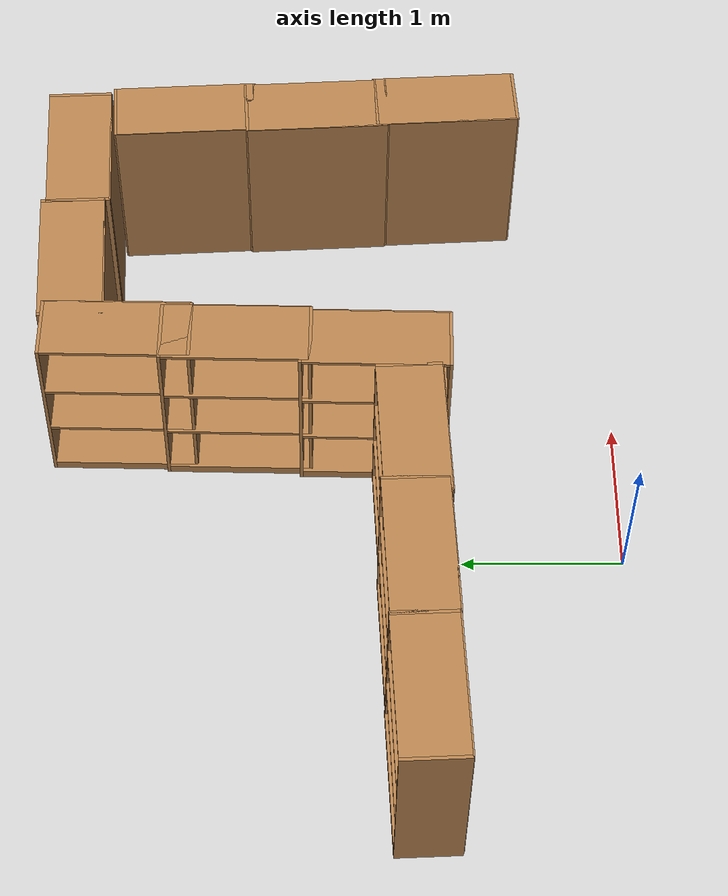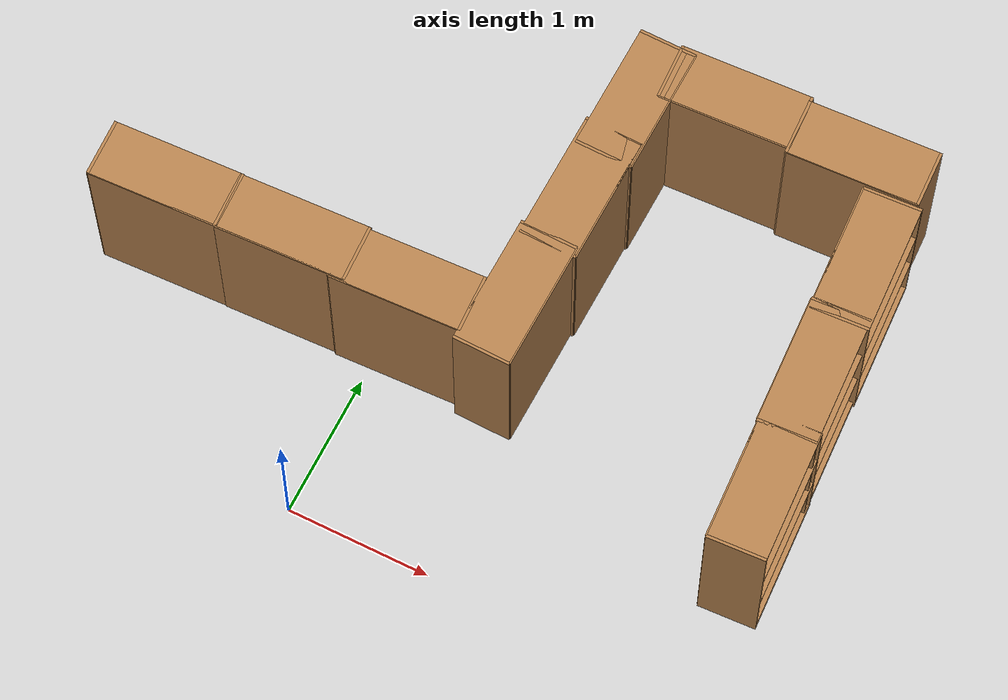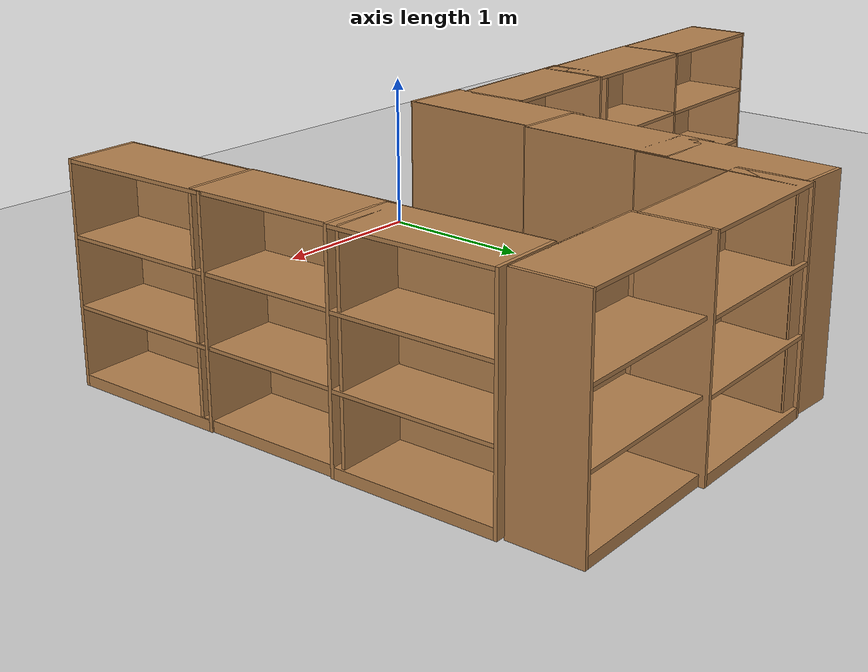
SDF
<sdf version="1.6">
 <world name="default">
  <model name="ground_plane">
   <static>1</static>
   <link name="link">
    <collision name="collision">
     <geometry><plane><normal>0 0 1</normal><size>100 100</size></plane></geometry>
     <surface>
      <contact><collide_bitmask>65535</collide_bitmask></contact>
      <friction><ode><mu>100</mu><mu2>50</mu2></ode></friction>
     </surface>
    </collision>
    <visual name="visual">
     <cast_shadows>0</cast_shadows>
     <geometry><plane><normal>0 0 1</normal><size>100 100</size></plane></geometry>
     <material>
      <script><uri>file://media/materials/scripts/gazebo.material</uri><name>Gazebo/Grey</name></script>
     </material>
    </visual>
   </link>
  </model>
  <model name="bookshelf_clone_0_clone">
   <static>1</static>
   <link name="link">
    <inertial><mass>1</mass></inertial>
    <collision name="back">
     <pose>0 0.005 0.6 0 -0 0</pose>
     <geometry><box><size>0.9 0.01 1.2</size></box></geometry>
    </collision>
    <visual name="visual1">
     <pose>0 0.005 0.6 0 -0 0</pose>
     <geometry><box><size>0.9 0.01 1.2</size></box></geometry>
     <material>
      <script><uri>file://media/materials/scripts/gazebo.material</uri><name>Gazebo/Wood</name></script>
     </material>
    </visual>
    <collision name="left_side">
     <pose>0.45 -0.195 0.6 0 -0 0</pose>
     <geometry><box><size>0.02 0.4 1.2</size></box></geometry>
    </collision>
    <visual name="visual2">
     <pose>0.45 -0.195 0.6 0 -0 0</pose>
     <geometry><box><size>0.02 0.4 1.2</size></box></geometry>
     <material>
      <script><uri>file://media/materials/scripts/gazebo.material</uri><name>Gazebo/Wood</name></script>
     </material>
    </visual>
    <collision name="right_side">
     <pose>-0.45 -0.195 0.6 0 -0 0</pose>
     <geometry><box><size>0.02 0.4 1.2</size></box></geometry>
    </collision>
    <visual name="visual3">
     <pose>-0.45 -0.195 0.6 0 -0 0</pose>
     <geometry><box><size>0.02 0.4 1.2</size></box></geometry>
     <material>
      <script><uri>file://media/materials/scripts/gazebo.material</uri><name>Gazebo/Wood</name></script>
     </material>
    </visual>
    <collision name="bottom">
     <pose>0 -0.195 0.03 0 -0 0</pose>
     <geometry><box><size>0.88 0.4 0.06</size></box></geometry>
    </collision>
    <visual name="visual4">
     <pose>0 -0.195 0.03 0 -0 0</pose>
     <geometry><box><size>0.88 0.4 0.06</size></box></geometry>
     <material>
      <script><uri>file://media/materials/scripts/gazebo.material</uri><name>Gazebo/Wood</name></script>
     </material>
    </visual>
    <collision name="top">
     <pose>0 -0.195 1.19 0 -0 0</pose>
     <geometry><box><size>0.88 0.4 0.02</size></box></geometry>
    </collision>
    <visual name="visual5">
     <pose>0 -0.195 1.19 0 -0 0</pose>
     <geometry><box><size>0.88 0.4 0.02</size></box></geometry>
     <material>
      <script><uri>file://media/materials/scripts/gazebo.material</uri><name>Gazebo/Wood</name></script>
     </material>
    </visual>
    <collision name="low_shelf">
     <pose>0 -0.195 0.43 0 -0 0</pose>
     <geometry><box><size>0.88 0.4 0.02</size></box></geometry>
    </collision>
    <visual name="visual6">
     <pose>0 -0.195 0.43 0 -0 0</pose>
     <geometry><box><size>0.88 0.4 0.02</size></box></geometry>
     <material>
      <script><uri>file://media/materials/scripts/gazebo.material</uri><name>Gazebo/Wood</name></script>
     </material>
    </visual>
    <collision name="high_shelf">
     <pose>0 -0.195 0.8 0 -0 0</pose>
     <geometry><box><size>0.88 0.4 0.02</size></box></geometry>
    </collision>
    <visual name="visual7">
     <pose>0 -0.195 0.8 0 -0 0</pose>
     <geometry><box><size>0.88 0.4 0.02</size></box></geometry>
     <material>
      <script><uri>file://media/materials/scripts/gazebo.material</uri><name>Gazebo/Wood</name></script>
     </material>
    </visual>
   </link>
   <pose>-1.49307 1.07905 0 0 0 -3.10047</pose>
  </model>
  <model name="bookshelf_clone_0_clone_clone">
   <static>1</static>
   <link name="link">
    <inertial><mass>1</mass></inertial>
    <collision name="back">
     <pose>0 0.005 0.6 0 -0 0</pose>
     <geometry><box><size>0.9 0.01 1.2</size></box></geometry>
    </collision>
    <visual name="visual1">
     <pose>0 0.005 0.6 0 -0 0</pose>
     <geometry><box><size>0.9 0.01 1.2</size></box></geometry>
     <material>
      <script><uri>file://media/materials/scripts/gazebo.material</uri><name>Gazebo/Wood</name></script>
     </material>
    </visual>
    <collision name="left_side">
     <pose>0.45 -0.195 0.6 0 -0 0</pose>
     <geometry><box><size>0.02 0.4 1.2</size></box></geometry>
    </collision>
    <visual name="visual2">
     <pose>0.45 -0.195 0.6 0 -0 0</pose>
     <geometry><box><size>0.02 0.4 1.2</size></box></geometry>
     <material>
      <script><uri>file://media/materials/scripts/gazebo.material</uri><name>Gazebo/Wood</name></script>
     </material>
    </visual>
    <collision name="right_side">
     <pose>-0.45 -0.195 0.6 0 -0 0</pose>
     <geometry><box><size>0.02 0.4 1.2</size></box></geometry>
    </collision>
    <visual name="visual3">
     <pose>-0.45 -0.195 0.6 0 -0 0</pose>
     <geometry><box><size>0.02 0.4 1.2</size></box></geometry>
     <material>
      <script><uri>file://media/materials/scripts/gazebo.material</uri><name>Gazebo/Wood</name></script>
     </material>
    </visual>
    <collision name="bottom">
     <pose>0 -0.195 0.03 0 -0 0</pose>
     <geometry><box><size>0.88 0.4 0.06</size></box></geometry>
    </collision>
    <visual name="visual4">
     <pose>0 -0.195 0.03 0 -0 0</pose>
     <geometry><box><size>0.88 0.4 0.06</size></box></geometry>
     <material>
      <script><uri>file://media/materials/scripts/gazebo.material</uri><name>Gazebo/Wood</name></script>
     </material>
    </visual>
    <collision name="top">
     <pose>0 -0.195 1.19 0 -0 0</pose>
     <geometry><box><size>0.88 0.4 0.02</size></box></geometry>
    </collision>
    <visual name="visual5">
     <pose>0 -0.195 1.19 0 -0 0</pose>
     <geometry><box><size>0.88 0.4 0.02</size></box></geometry>
     <material>
      <script><uri>file://media/materials/scripts/gazebo.material</uri><name>Gazebo/Wood</name></script>
     </material>
    </visual>
    <collision name="low_shelf">
     <pose>0 -0.195 0.43 0 -0 0</pose>
     <geometry><box><size>0.88 0.4 0.02</size></box></geometry>
    </collision>
    <visual name="visual6">
     <pose>0 -0.195 0.43 0 -0 0</pose>
     <geometry><box><size>0.88 0.4 0.02</size></box></geometry>
     <material>
      <script><uri>file://media/materials/scripts/gazebo.material</uri><name>Gazebo/Wood</name></script>
     </material>
    </visual>
    <collision name="high_shelf">
     <pose>0 -0.195 0.8 0 -0 0</pose>
     <geometry><box><size>0.88 0.4 0.02</size></box></geometry>
    </collision>
    <visual name="visual7">
     <pose>0 -0.195 0.8 0 -0 0</pose>
     <geometry><box><size>0.88 0.4 0.02</size></box></geometry>
     <material>
      <script><uri>file://media/materials/scripts/gazebo.material</uri><name>Gazebo/Wood</name></script>
     </material>
    </visual>
   </link>
   <pose>-0.599355 1.11109 0 0 0 -3.10047</pose>
  </model>
  <model name="bookshelf_clone_0_clone_clone_0">
   <static>1</static>
   <link name="link">
    <inertial><mass>1</mass></inertial>
    <collision name="back">
     <pose>0 0.005 0.6 0 -0 0</pose>
     <geometry><box><size>0.9 0.01 1.2</size></box></geometry>
    </collision>
    <visual name="visual1">
     <pose>0 0.005 0.6 0 -0 0</pose>
     <geometry><box><size>0.9 0.01 1.2</size></box></geometry>
     <material>
      <script><uri>file://media/materials/scripts/gazebo.material</uri><name>Gazebo/Wood</name></script>
     </material>
    </visual>
    <collision name="left_side">
     <pose>0.45 -0.195 0.6 0 -0 0</pose>
     <geometry><box><size>0.02 0.4 1.2</size></box></geometry>
    </collision>
    <visual name="visual2">
     <pose>0.45 -0.195 0.6 0 -0 0</pose>
     <geometry><box><size>0.02 0.4 1.2</size></box></geometry>
     <material>
      <script><uri>file://media/materials/scripts/gazebo.material</uri><name>Gazebo/Wood</name></script>
     </material>
    </visual>
    <collision name="right_side">
     <pose>-0.45 -0.195 0.6 0 -0 0</pose>
     <geometry><box><size>0.02 0.4 1.2</size></box></geometry>
    </collision>
    <visual name="visual3">
     <pose>-0.45 -0.195 0.6 0 -0 0</pose>
     <geometry><box><size>0.02 0.4 1.2</size></box></geometry>
     <material>
      <script><uri>file://media/materials/scripts/gazebo.material</uri><name>Gazebo/Wood</name></script>
     </material>
    </visual>
    <collision name="bottom">
     <pose>0 -0.195 0.03 0 -0 0</pose>
     <geometry><box><size>0.88 0.4 0.06</size></box></geometry>
    </collision>
    <visual name="visual4">
     <pose>0 -0.195 0.03 0 -0 0</pose>
     <geometry><box><size>0.88 0.4 0.06</size></box></geometry>
     <material>
      <script><uri>file://media/materials/scripts/gazebo.material</uri><name>Gazebo/Wood</name></script>
     </material>
    </visual>
    <collision name="top">
     <pose>0 -0.195 1.19 0 -0 0</pose>
     <geometry><box><size>0.88 0.4 0.02</size></box></geometry>
    </collision>
    <visual name="visual5">
     <pose>0 -0.195 1.19 0 -0 0</pose>
     <geometry><box><size>0.88 0.4 0.02</size></box></geometry>
     <material>
      <script><uri>file://media/materials/scripts/gazebo.material</uri><name>Gazebo/Wood</name></script>
     </material>
    </visual>
    <collision name="low_shelf">
     <pose>0 -0.195 0.43 0 -0 0</pose>
     <geometry><box><size>0.88 0.4 0.02</size></box></geometry>
    </collision>
    <visual name="visual6">
     <pose>0 -0.195 0.43 0 -0 0</pose>
     <geometry><box><size>0.88 0.4 0.02</size></box></geometry>
     <material>
      <script><uri>file://media/materials/scripts/gazebo.material</uri><name>Gazebo/Wood</name></script>
     </material>
    </visual>
    <collision name="high_shelf">
     <pose>0 -0.195 0.8 0 -0 0</pose>
     <geometry><box><size>0.88 0.4 0.02</size></box></geometry>
    </collision>
    <visual name="visual7">
     <pose>0 -0.195 0.8 0 -0 0</pose>
     <geometry><box><size>0.88 0.4 0.02</size></box></geometry>
     <material>
      <script><uri>file://media/materials/scripts/gazebo.material</uri><name>Gazebo/Wood</name></script>
     </material>
    </visual>
   </link>
   <pose>0.20456 1.13017 0 0 0 -3.10047</pose>
  </model>
  <model name="bookshelf_clone_1_clone_0_clone">
   <static>1</static>
   <link name="link">
    <inertial><mass>1</mass></inertial>
    <collision name="back">
     <pose>0 0.005 0.6 0 -0 0</pose>
     <geometry><box><size>0.9 0.01 1.2</size></box></geometry>
    </collision>
    <visual name="visual1">
     <pose>0 0.005 0.6 0 -0 0</pose>
     <geometry><box><size>0.9 0.01 1.2</size></box></geometry>
     <material>
      <script><uri>file://media/materials/scripts/gazebo.material</uri><name>Gazebo/Wood</name></script>
     </material>
    </visual>
    <collision name="left_side">
     <pose>0.45 -0.195 0.6 0 -0 0</pose>
     <geometry><box><size>0.02 0.4 1.2</size></box></geometry>
    </collision>
    <visual name="visual2">
     <pose>0.45 -0.195 0.6 0 -0 0</pose>
     <geometry><box><size>0.02 0.4 1.2</size></box></geometry>
     <material>
      <script><uri>file://media/materials/scripts/gazebo.material</uri><name>Gazebo/Wood</name></script>
     </material>
    </visual>
    <collision name="right_side">
     <pose>-0.45 -0.195 0.6 0 -0 0</pose>
     <geometry><box><size>0.02 0.4 1.2</size></box></geometry>
    </collision>
    <visual name="visual3">
     <pose>-0.45 -0.195 0.6 0 -0 0</pose>
     <geometry><box><size>0.02 0.4 1.2</size></box></geometry>
     <material>
      <script><uri>file://media/materials/scripts/gazebo.material</uri><name>Gazebo/Wood</name></script>
     </material>
    </visual>
    <collision name="bottom">
     <pose>0 -0.195 0.03 0 -0 0</pose>
     <geometry><box><size>0.88 0.4 0.06</size></box></geometry>
    </collision>
    <visual name="visual4">
     <pose>0 -0.195 0.03 0 -0 0</pose>
     <geometry><box><size>0.88 0.4 0.06</size></box></geometry>
     <material>
      <script><uri>file://media/materials/scripts/gazebo.material</uri><name>Gazebo/Wood</name></script>
     </material>
    </visual>
    <collision name="top">
     <pose>0 -0.195 1.19 0 -0 0</pose>
     <geometry><box><size>0.88 0.4 0.02</size></box></geometry>
    </collision>
    <visual name="visual5">
     <pose>0 -0.195 1.19 0 -0 0</pose>
     <geometry><box><size>0.88 0.4 0.02</size></box></geometry>
     <material>
      <script><uri>file://media/materials/scripts/gazebo.material</uri><name>Gazebo/Wood</name></script>
     </material>
    </visual>
    <collision name="low_shelf">
     <pose>0 -0.195 0.43 0 -0 0</pose>
     <geometry><box><size>0.88 0.4 0.02</size></box></geometry>
    </collision>
    <visual name="visual6">
     <pose>0 -0.195 0.43 0 -0 0</pose>
     <geometry><box><size>0.88 0.4 0.02</size></box></geometry>
     <material>
      <script><uri>file://media/materials/scripts/gazebo.material</uri><name>Gazebo/Wood</name></script>
     </material>
    </visual>
    <collision name="high_shelf">
     <pose>0 -0.195 0.8 0 -0 0</pose>
     <geometry><box><size>0.88 0.4 0.02</size></box></geometry>
    </collision>
    <visual name="visual7">
     <pose>0 -0.195 0.8 0 -0 0</pose>
     <geometry><box><size>0.88 0.4 0.02</size></box></geometry>
     <material>
      <script><uri>file://media/materials/scripts/gazebo.material</uri><name>Gazebo/Wood</name></script>
     </material>
    </visual>
   </link>
   <pose>1.04575 1.53142 0 0 0 -1.59248</pose>
  </model>
  <model name="bookshelf_clone_1_clone_0_clone_0">
   <static>1</static>
   <link name="link">
    <inertial><mass>1</mass></inertial>
    <collision name="back">
     <pose>0 0.005 0.6 0 -0 0</pose>
     <geometry><box><size>0.9 0.01 1.2</size></box></geometry>
    </collision>
    <visual name="visual1">
     <pose>0 0.005 0.6 0 -0 0</pose>
     <geometry><box><size>0.9 0.01 1.2</size></box></geometry>
     <material>
      <script><uri>file://media/materials/scripts/gazebo.material</uri><name>Gazebo/Wood</name></script>
     </material>
    </visual>
    <collision name="left_side">
     <pose>0.45 -0.195 0.6 0 -0 0</pose>
     <geometry><box><size>0.02 0.4 1.2</size></box></geometry>
    </collision>
    <visual name="visual2">
     <pose>0.45 -0.195 0.6 0 -0 0</pose>
     <geometry><box><size>0.02 0.4 1.2</size></box></geometry>
     <material>
      <script><uri>file://media/materials/scripts/gazebo.material</uri><name>Gazebo/Wood</name></script>
     </material>
    </visual>
    <collision name="right_side">
     <pose>-0.45 -0.195 0.6 0 -0 0</pose>
     <geometry><box><size>0.02 0.4 1.2</size></box></geometry>
    </collision>
    <visual name="visual3">
     <pose>-0.45 -0.195 0.6 0 -0 0</pose>
     <geometry><box><size>0.02 0.4 1.2</size></box></geometry>
     <material>
      <script><uri>file://media/materials/scripts/gazebo.material</uri><name>Gazebo/Wood</name></script>
     </material>
    </visual>
    <collision name="bottom">
     <pose>0 -0.195 0.03 0 -0 0</pose>
     <geometry><box><size>0.88 0.4 0.06</size></box></geometry>
    </collision>
    <visual name="visual4">
     <pose>0 -0.195 0.03 0 -0 0</pose>
     <geometry><box><size>0.88 0.4 0.06</size></box></geometry>
     <material>
      <script><uri>file://media/materials/scripts/gazebo.material</uri><name>Gazebo/Wood</name></script>
     </material>
    </visual>
    <collision name="top">
     <pose>0 -0.195 1.19 0 -0 0</pose>
     <geometry><box><size>0.88 0.4 0.02</size></box></geometry>
    </collision>
    <visual name="visual5">
     <pose>0 -0.195 1.19 0 -0 0</pose>
     <geometry><box><size>0.88 0.4 0.02</size></box></geometry>
     <material>
      <script><uri>file://media/materials/scripts/gazebo.material</uri><name>Gazebo/Wood</name></script>
     </material>
    </visual>
    <collision name="low_shelf">
     <pose>0 -0.195 0.43 0 -0 0</pose>
     <geometry><box><size>0.88 0.4 0.02</size></box></geometry>
    </collision>
    <visual name="visual6">
     <pose>0 -0.195 0.43 0 -0 0</pose>
     <geometry><box><size>0.88 0.4 0.02</size></box></geometry>
     <material>
      <script><uri>file://media/materials/scripts/gazebo.material</uri><name>Gazebo/Wood</name></script>
     </material>
    </visual>
    <collision name="high_shelf">
     <pose>0 -0.195 0.8 0 -0 0</pose>
     <geometry><box><size>0.88 0.4 0.02</size></box></geometry>
    </collision>
    <visual name="visual7">
     <pose>0 -0.195 0.8 0 -0 0</pose>
     <geometry><box><size>0.88 0.4 0.02</size></box></geometry>
     <material>
      <script><uri>file://media/materials/scripts/gazebo.material</uri><name>Gazebo/Wood</name></script>
     </material>
    </visual>
   </link>
   <pose>1.08658 2.37283 0 0 0 -1.59248</pose>
  </model>
  <model name="bookshelf_clone_1_clone_0_clone_1">
   <static>1</static>
   <link name="link">
    <inertial><mass>1</mass></inertial>
    <collision name="back">
     <pose>0 0.005 0.6 0 -0 0</pose>
     <geometry><box><size>0.9 0.01 1.2</size></box></geometry>
    </collision>
    <visual name="visual1">
     <pose>0 0.005 0.6 0 -0 0</pose>
     <geometry><box><size>0.9 0.01 1.2</size></box></geometry>
     <material>
      <script><uri>file://media/materials/scripts/gazebo.material</uri><name>Gazebo/Wood</name></script>
     </material>
    </visual>
    <collision name="left_side">
     <pose>0.45 -0.195 0.6 0 -0 0</pose>
     <geometry><box><size>0.02 0.4 1.2</size></box></geometry>
    </collision>
    <visual name="visual2">
     <pose>0.45 -0.195 0.6 0 -0 0</pose>
     <geometry><box><size>0.02 0.4 1.2</size></box></geometry>
     <material>
      <script><uri>file://media/materials/scripts/gazebo.material</uri><name>Gazebo/Wood</name></script>
     </material>
    </visual>
    <collision name="right_side">
     <pose>-0.45 -0.195 0.6 0 -0 0</pose>
     <geometry><box><size>0.02 0.4 1.2</size></box></geometry>
    </collision>
    <visual name="visual3">
     <pose>-0.45 -0.195 0.6 0 -0 0</pose>
     <geometry><box><size>0.02 0.4 1.2</size></box></geometry>
     <material>
      <script><uri>file://media/materials/scripts/gazebo.material</uri><name>Gazebo/Wood</name></script>
     </material>
    </visual>
    <collision name="bottom">
     <pose>0 -0.195 0.03 0 -0 0</pose>
     <geometry><box><size>0.88 0.4 0.06</size></box></geometry>
    </collision>
    <visual name="visual4">
     <pose>0 -0.195 0.03 0 -0 0</pose>
     <geometry><box><size>0.88 0.4 0.06</size></box></geometry>
     <material>
      <script><uri>file://media/materials/scripts/gazebo.material</uri><name>Gazebo/Wood</name></script>
     </material>
    </visual>
    <collision name="top">
     <pose>0 -0.195 1.19 0 -0 0</pose>
     <geometry><box><size>0.88 0.4 0.02</size></box></geometry>
    </collision>
    <visual name="visual5">
     <pose>0 -0.195 1.19 0 -0 0</pose>
     <geometry><box><size>0.88 0.4 0.02</size></box></geometry>
     <material>
      <script><uri>file://media/materials/scripts/gazebo.material</uri><name>Gazebo/Wood</name></script>
     </material>
    </visual>
    <collision name="low_shelf">
     <pose>0 -0.195 0.43 0 -0 0</pose>
     <geometry><box><size>0.88 0.4 0.02</size></box></geometry>
    </collision>
    <visual name="visual6">
     <pose>0 -0.195 0.43 0 -0 0</pose>
     <geometry><box><size>0.88 0.4 0.02</size></box></geometry>
     <material>
      <script><uri>file://media/materials/scripts/gazebo.material</uri><name>Gazebo/Wood</name></script>
     </material>
    </visual>
    <collision name="high_shelf">
     <pose>0 -0.195 0.8 0 -0 0</pose>
     <geometry><box><size>0.88 0.4 0.02</size></box></geometry>
    </collision>
    <visual name="visual7">
     <pose>0 -0.195 0.8 0 -0 0</pose>
     <geometry><box><size>0.88 0.4 0.02</size></box></geometry>
     <material>
      <script><uri>file://media/materials/scripts/gazebo.material</uri><name>Gazebo/Wood</name></script>
     </material>
    </visual>
   </link>
   <pose>1.11947 3.09609 0 0 0 -1.59248</pose>
  </model>
  <model name="bookshelf_clone_0_clone_clone_1_clone">
   <static>1</static>
   <link name="link">
    <inertial><mass>1</mass></inertial>
    <collision name="back">
     <pose>0 0.005 0.6 0 -0 0</pose>
     <geometry><box><size>0.9 0.01 1.2</size></box></geometry>
    </collision>
    <visual name="visual1">
     <pose>0 0.005 0.6 0 -0 0</pose>
     <geometry><box><size>0.9 0.01 1.2</size></box></geometry>
     <material>
      <script><uri>file://media/materials/scripts/gazebo.material</uri><name>Gazebo/Wood</name></script>
     </material>
    </visual>
    <collision name="left_side">
     <pose>0.45 -0.195 0.6 0 -0 0</pose>
     <geometry><box><size>0.02 0.4 1.2</size></box></geometry>
    </collision>
    <visual name="visual2">
     <pose>0.45 -0.195 0.6 0 -0 0</pose>
     <geometry><box><size>0.02 0.4 1.2</size></box></geometry>
     <material>
      <script><uri>file://media/materials/scripts/gazebo.material</uri><name>Gazebo/Wood</name></script>
     </material>
    </visual>
    <collision name="right_side">
     <pose>-0.45 -0.195 0.6 0 -0 0</pose>
     <geometry><box><size>0.02 0.4 1.2</size></box></geometry>
    </collision>
    <visual name="visual3">
     <pose>-0.45 -0.195 0.6 0 -0 0</pose>
     <geometry><box><size>0.02 0.4 1.2</size></box></geometry>
     <material>
      <script><uri>file://media/materials/scripts/gazebo.material</uri><name>Gazebo/Wood</name></script>
     </material>
    </visual>
    <collision name="bottom">
     <pose>0 -0.195 0.03 0 -0 0</pose>
     <geometry><box><size>0.88 0.4 0.06</size></box></geometry>
    </collision>
    <visual name="visual4">
     <pose>0 -0.195 0.03 0 -0 0</pose>
     <geometry><box><size>0.88 0.4 0.06</size></box></geometry>
     <material>
      <script><uri>file://media/materials/scripts/gazebo.material</uri><name>Gazebo/Wood</name></script>
     </material>
    </visual>
    <collision name="top">
     <pose>0 -0.195 1.19 0 -0 0</pose>
     <geometry><box><size>0.88 0.4 0.02</size></box></geometry>
    </collision>
    <visual name="visual5">
     <pose>0 -0.195 1.19 0 -0 0</pose>
     <geometry><box><size>0.88 0.4 0.02</size></box></geometry>
     <material>
      <script><uri>file://media/materials/scripts/gazebo.material</uri><name>Gazebo/Wood</name></script>
     </material>
    </visual>
    <collision name="low_shelf">
     <pose>0 -0.195 0.43 0 -0 0</pose>
     <geometry><box><size>0.88 0.4 0.02</size></box></geometry>
    </collision>
    <visual name="visual6">
     <pose>0 -0.195 0.43 0 -0 0</pose>
     <geometry><box><size>0.88 0.4 0.02</size></box></geometry>
     <material>
      <script><uri>file://media/materials/scripts/gazebo.material</uri><name>Gazebo/Wood</name></script>
     </material>
    </visual>
    <collision name="high_shelf">
     <pose>0 -0.195 0.8 0 -0 0</pose>
     <geometry><box><size>0.88 0.4 0.02</size></box></geometry>
    </collision>
    <visual name="visual7">
     <pose>0 -0.195 0.8 0 -0 0</pose>
     <geometry><box><size>0.88 0.4 0.02</size></box></geometry>
     <material>
      <script><uri>file://media/materials/scripts/gazebo.material</uri><name>Gazebo/Wood</name></script>
     </material>
    </visual>
   </link>
   <pose>1.49446 3.20129 0 0 0 -3.10047</pose>
  </model>
  <model name="bookshelf_clone_0_clone_clone_1_clone_0">
   <static>1</static>
   <link name="link">
    <inertial><mass>1</mass></inertial>
    <collision name="back">
     <pose>0 0.005 0.6 0 -0 0</pose>
     <geometry><box><size>0.9 0.01 1.2</size></box></geometry>
    </collision>
    <visual name="visual1">
     <pose>0 0.005 0.6 0 -0 0</pose>
     <geometry><box><size>0.9 0.01 1.2</size></box></geometry>
     <material>
      <script><uri>file://media/materials/scripts/gazebo.material</uri><name>Gazebo/Wood</name></script>
     </material>
    </visual>
    <collision name="left_side">
     <pose>0.45 -0.195 0.6 0 -0 0</pose>
     <geometry><box><size>0.02 0.4 1.2</size></box></geometry>
    </collision>
    <visual name="visual2">
     <pose>0.45 -0.195 0.6 0 -0 0</pose>
     <geometry><box><size>0.02 0.4 1.2</size></box></geometry>
     <material>
      <script><uri>file://media/materials/scripts/gazebo.material</uri><name>Gazebo/Wood</name></script>
     </material>
    </visual>
    <collision name="right_side">
     <pose>-0.45 -0.195 0.6 0 -0 0</pose>
     <geometry><box><size>0.02 0.4 1.2</size></box></geometry>
    </collision>
    <visual name="visual3">
     <pose>-0.45 -0.195 0.6 0 -0 0</pose>
     <geometry><box><size>0.02 0.4 1.2</size></box></geometry>
     <material>
      <script><uri>file://media/materials/scripts/gazebo.material</uri><name>Gazebo/Wood</name></script>
     </material>
    </visual>
    <collision name="bottom">
     <pose>0 -0.195 0.03 0 -0 0</pose>
     <geometry><box><size>0.88 0.4 0.06</size></box></geometry>
    </collision>
    <visual name="visual4">
     <pose>0 -0.195 0.03 0 -0 0</pose>
     <geometry><box><size>0.88 0.4 0.06</size></box></geometry>
     <material>
      <script><uri>file://media/materials/scripts/gazebo.material</uri><name>Gazebo/Wood</name></script>
     </material>
    </visual>
    <collision name="top">
     <pose>0 -0.195 1.19 0 -0 0</pose>
     <geometry><box><size>0.88 0.4 0.02</size></box></geometry>
    </collision>
    <visual name="visual5">
     <pose>0 -0.195 1.19 0 -0 0</pose>
     <geometry><box><size>0.88 0.4 0.02</size></box></geometry>
     <material>
      <script><uri>file://media/materials/scripts/gazebo.material</uri><name>Gazebo/Wood</name></script>
     </material>
    </visual>
    <collision name="low_shelf">
     <pose>0 -0.195 0.43 0 -0 0</pose>
     <geometry><box><size>0.88 0.4 0.02</size></box></geometry>
    </collision>
    <visual name="visual6">
     <pose>0 -0.195 0.43 0 -0 0</pose>
     <geometry><box><size>0.88 0.4 0.02</size></box></geometry>
     <material>
      <script><uri>file://media/materials/scripts/gazebo.material</uri><name>Gazebo/Wood</name></script>
     </material>
    </visual>
    <collision name="high_shelf">
     <pose>0 -0.195 0.8 0 -0 0</pose>
     <geometry><box><size>0.88 0.4 0.02</size></box></geometry>
    </collision>
    <visual name="visual7">
     <pose>0 -0.195 0.8 0 -0 0</pose>
     <geometry><box><size>0.88 0.4 0.02</size></box></geometry>
     <material>
      <script><uri>file://media/materials/scripts/gazebo.material</uri><name>Gazebo/Wood</name></script>
     </material>
    </visual>
   </link>
   <pose>2.3937 3.20747 0 0 0 -3.10047</pose>
  </model>
  <model name="bookshelf_clone_0_clone_clone_1_clone_1">
   <static>1</static>
   <link name="link">
    <inertial><mass>1</mass></inertial>
    <collision name="back">
     <pose>0 0.005 0.6 0 -0 0</pose>
     <geometry><box><size>0.9 0.01 1.2</size></box></geometry>
    </collision>
    <visual name="visual1">
     <pose>0 0.005 0.6 0 -0 0</pose>
     <geometry><box><size>0.9 0.01 1.2</size></box></geometry>
     <material>
      <script><uri>file://media/materials/scripts/gazebo.material</uri><name>Gazebo/Wood</name></script>
     </material>
    </visual>
    <collision name="left_side">
     <pose>0.45 -0.195 0.6 0 -0 0</pose>
     <geometry><box><size>0.02 0.4 1.2</size></box></geometry>
    </collision>
    <visual name="visual2">
     <pose>0.45 -0.195 0.6 0 -0 0</pose>
     <geometry><box><size>0.02 0.4 1.2</size></box></geometry>
     <material>
      <script><uri>file://media/materials/scripts/gazebo.material</uri><name>Gazebo/Wood</name></script>
     </material>
    </visual>
    <collision name="right_side">
     <pose>-0.45 -0.195 0.6 0 -0 0</pose>
     <geometry><box><size>0.02 0.4 1.2</size></box></geometry>
    </collision>
    <visual name="visual3">
     <pose>-0.45 -0.195 0.6 0 -0 0</pose>
     <geometry><box><size>0.02 0.4 1.2</size></box></geometry>
     <material>
      <script><uri>file://media/materials/scripts/gazebo.material</uri><name>Gazebo/Wood</name></script>
     </material>
    </visual>
    <collision name="bottom">
     <pose>0 -0.195 0.03 0 -0 0</pose>
     <geometry><box><size>0.88 0.4 0.06</size></box></geometry>
    </collision>
    <visual name="visual4">
     <pose>0 -0.195 0.03 0 -0 0</pose>
     <geometry><box><size>0.88 0.4 0.06</size></box></geometry>
     <material>
      <script><uri>file://media/materials/scripts/gazebo.material</uri><name>Gazebo/Wood</name></script>
     </material>
    </visual>
    <collision name="top">
     <pose>0 -0.195 1.19 0 -0 0</pose>
     <geometry><box><size>0.88 0.4 0.02</size></box></geometry>
    </collision>
    <visual name="visual5">
     <pose>0 -0.195 1.19 0 -0 0</pose>
     <geometry><box><size>0.88 0.4 0.02</size></box></geometry>
     <material>
      <script><uri>file://media/materials/scripts/gazebo.material</uri><name>Gazebo/Wood</name></script>
     </material>
    </visual>
    <collision name="low_shelf">
     <pose>0 -0.195 0.43 0 -0 0</pose>
     <geometry><box><size>0.88 0.4 0.02</size></box></geometry>
    </collision>
    <visual name="visual6">
     <pose>0 -0.195 0.43 0 -0 0</pose>
     <geometry><box><size>0.88 0.4 0.02</size></box></geometry>
     <material>
      <script><uri>file://media/materials/scripts/gazebo.material</uri><name>Gazebo/Wood</name></script>
     </material>
    </visual>
    <collision name="high_shelf">
     <pose>0 -0.195 0.8 0 -0 0</pose>
     <geometry><box><size>0.88 0.4 0.02</size></box></geometry>
    </collision>
    <visual name="visual7">
     <pose>0 -0.195 0.8 0 -0 0</pose>
     <geometry><box><size>0.88 0.4 0.02</size></box></geometry>
     <material>
      <script><uri>file://media/materials/scripts/gazebo.material</uri><name>Gazebo/Wood</name></script>
     </material>
    </visual>
   </link>
   <pose>2.51523 2.72803 0 0 -0 1.62397</pose>
  </model>
  <model name="bookshelf_clone_0_clone_clone_1_clone_2">
   <static>1</static>
   <link name="link">
    <inertial><mass>1</mass></inertial>
    <collision name="back">
     <pose>0 0.005 0.6 0 -0 0</pose>
     <geometry><box><size>0.9 0.01 1.2</size></box></geometry>
    </collision>
    <visual name="visual1">
     <pose>0 0.005 0.6 0 -0 0</pose>
     <geometry><box><size>0.9 0.01 1.2</size></box></geometry>
     <material>
      <script><uri>file://media/materials/scripts/gazebo.material</uri><name>Gazebo/Wood</name></script>
     </material>
    </visual>
    <collision name="left_side">
     <pose>0.45 -0.195 0.6 0 -0 0</pose>
     <geometry><box><size>0.02 0.4 1.2</size></box></geometry>
    </collision>
    <visual name="visual2">
     <pose>0.45 -0.195 0.6 0 -0 0</pose>
     <geometry><box><size>0.02 0.4 1.2</size></box></geometry>
     <material>
      <script><uri>file://media/materials/scripts/gazebo.material</uri><name>Gazebo/Wood</name></script>
     </material>
    </visual>
    <collision name="right_side">
     <pose>-0.45 -0.195 0.6 0 -0 0</pose>
     <geometry><box><size>0.02 0.4 1.2</size></box></geometry>
    </collision>
    <visual name="visual3">
     <pose>-0.45 -0.195 0.6 0 -0 0</pose>
     <geometry><box><size>0.02 0.4 1.2</size></box></geometry>
     <material>
      <script><uri>file://media/materials/scripts/gazebo.material</uri><name>Gazebo/Wood</name></script>
     </material>
    </visual>
    <collision name="bottom">
     <pose>0 -0.195 0.03 0 -0 0</pose>
     <geometry><box><size>0.88 0.4 0.06</size></box></geometry>
    </collision>
    <visual name="visual4">
     <pose>0 -0.195 0.03 0 -0 0</pose>
     <geometry><box><size>0.88 0.4 0.06</size></box></geometry>
     <material>
      <script><uri>file://media/materials/scripts/gazebo.material</uri><name>Gazebo/Wood</name></script>
     </material>
    </visual>
    <collision name="top">
     <pose>0 -0.195 1.19 0 -0 0</pose>
     <geometry><box><size>0.88 0.4 0.02</size></box></geometry>
    </collision>
    <visual name="visual5">
     <pose>0 -0.195 1.19 0 -0 0</pose>
     <geometry><box><size>0.88 0.4 0.02</size></box></geometry>
     <material>
      <script><uri>file://media/materials/scripts/gazebo.material</uri><name>Gazebo/Wood</name></script>
     </material>
    </visual>
    <collision name="low_shelf">
     <pose>0 -0.195 0.43 0 -0 0</pose>
     <geometry><box><size>0.88 0.4 0.02</size></box></geometry>
    </collision>
    <visual name="visual6">
     <pose>0 -0.195 0.43 0 -0 0</pose>
     <geometry><box><size>0.88 0.4 0.02</size></box></geometry>
     <material>
      <script><uri>file://media/materials/scripts/gazebo.material</uri><name>Gazebo/Wood</name></script>
     </material>
    </visual>
    <collision name="high_shelf">
     <pose>0 -0.195 0.8 0 -0 0</pose>
     <geometry><box><size>0.88 0.4 0.02</size></box></geometry>
    </collision>
    <visual name="visual7">
     <pose>0 -0.195 0.8 0 -0 0</pose>
     <geometry><box><size>0.88 0.4 0.02</size></box></geometry>
     <material>
      <script><uri>file://media/materials/scripts/gazebo.material</uri><name>Gazebo/Wood</name></script>
     </material>
    </visual>
   </link>
   <pose>2.5488 1.88622 0 0 -0 1.62397</pose>
  </model>
  <model name="bookshelf_clone_0_clone_clone_1_clone_3">
   <static>1</static>
   <link name="link">
    <inertial><mass>1</mass></inertial>
    <collision name="back">
     <pose>0 0.005 0.6 0 -0 0</pose>
     <geometry><box><size>0.9 0.01 1.2</size></box></geometry>
    </collision>
    <visual name="visual1">
     <pose>0 0.005 0.6 0 -0 0</pose>
     <geometry><box><size>0.9 0.01 1.2</size></box></geometry>
     <material>
      <script><uri>file://media/materials/scripts/gazebo.material</uri><name>Gazebo/Wood</name></script>
     </material>
    </visual>
    <collision name="left_side">
     <pose>0.45 -0.195 0.6 0 -0 0</pose>
     <geometry><box><size>0.02 0.4 1.2</size></box></geometry>
    </collision>
    <visual name="visual2">
     <pose>0.45 -0.195 0.6 0 -0 0</pose>
     <geometry><box><size>0.02 0.4 1.2</size></box></geometry>
     <material>
      <script><uri>file://media/materials/scripts/gazebo.material</uri><name>Gazebo/Wood</name></script>
     </material>
    </visual>
    <collision name="right_side">
     <pose>-0.45 -0.195 0.6 0 -0 0</pose>
     <geometry><box><size>0.02 0.4 1.2</size></box></geometry>
    </collision>
    <visual name="visual3">
     <pose>-0.45 -0.195 0.6 0 -0 0</pose>
     <geometry><box><size>0.02 0.4 1.2</size></box></geometry>
     <material>
      <script><uri>file://media/materials/scripts/gazebo.material</uri><name>Gazebo/Wood</name></script>
     </material>
    </visual>
    <collision name="bottom">
     <pose>0 -0.195 0.03 0 -0 0</pose>
     <geometry><box><size>0.88 0.4 0.06</size></box></geometry>
    </collision>
    <visual name="visual4">
     <pose>0 -0.195 0.03 0 -0 0</pose>
     <geometry><box><size>0.88 0.4 0.06</size></box></geometry>
     <material>
      <script><uri>file://media/materials/scripts/gazebo.material</uri><name>Gazebo/Wood</name></script>
     </material>
    </visual>
    <collision name="top">
     <pose>0 -0.195 1.19 0 -0 0</pose>
     <geometry><box><size>0.88 0.4 0.02</size></box></geometry>
    </collision>
    <visual name="visual5">
     <pose>0 -0.195 1.19 0 -0 0</pose>
     <geometry><box><size>0.88 0.4 0.02</size></box></geometry>
     <material>
      <script><uri>file://media/materials/scripts/gazebo.material</uri><name>Gazebo/Wood</name></script>
     </material>
    </visual>
    <collision name="low_shelf">
     <pose>0 -0.195 0.43 0 -0 0</pose>
     <geometry><box><size>0.88 0.4 0.02</size></box></geometry>
    </collision>
    <visual name="visual6">
     <pose>0 -0.195 0.43 0 -0 0</pose>
     <geometry><box><size>0.88 0.4 0.02</size></box></geometry>
     <material>
      <script><uri>file://media/materials/scripts/gazebo.material</uri><name>Gazebo/Wood</name></script>
     </material>
    </visual>
    <collision name="high_shelf">
     <pose>0 -0.195 0.8 0 -0 0</pose>
     <geometry><box><size>0.88 0.4 0.02</size></box></geometry>
    </collision>
    <visual name="visual7">
     <pose>0 -0.195 0.8 0 -0 0</pose>
     <geometry><box><size>0.88 0.4 0.02</size></box></geometry>
     <material>
      <script><uri>file://media/materials/scripts/gazebo.material</uri><name>Gazebo/Wood</name></script>
     </material>
    </visual>
   </link>
   <pose>2.60133 1.05247 0 0 -0 1.62397</pose>
  </model>
 </world>
</sdf>
